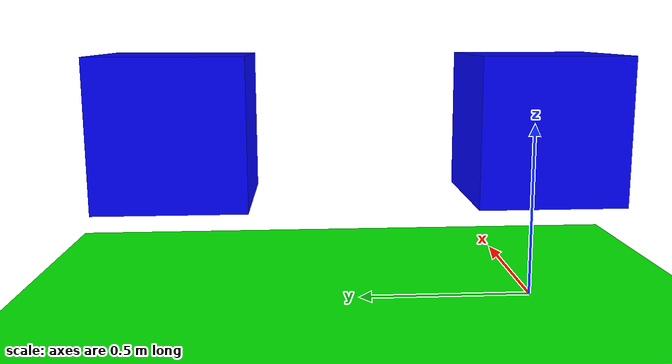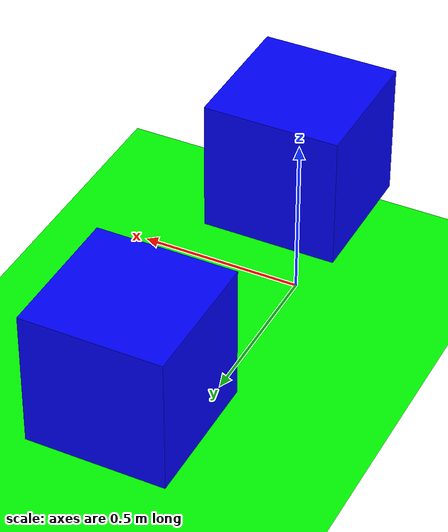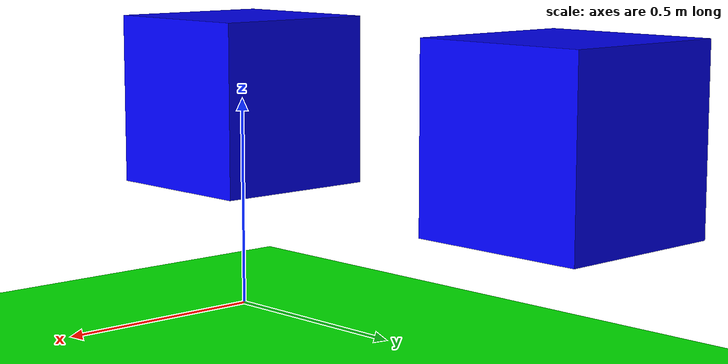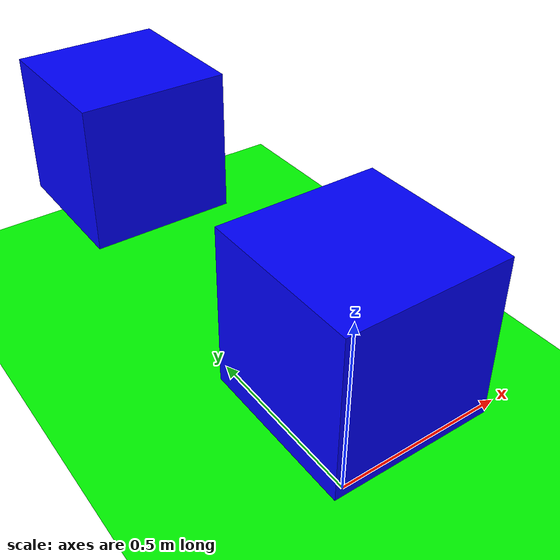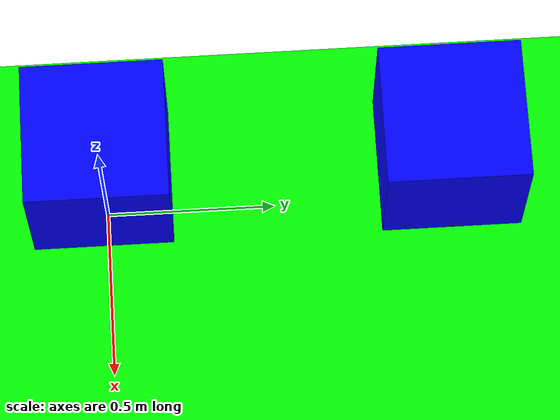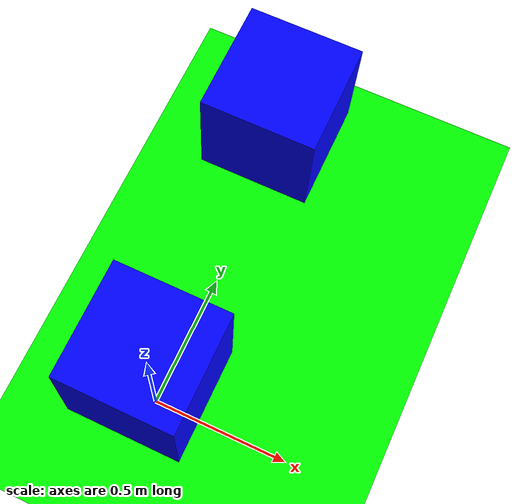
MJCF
<mujoco model="rolling_cube">
    <option timestep="0.01" gravity="0 0 -9.81"/> <!-- premte de definir la graviter -->
    <worldbody> <!-- la ou nous créon les objet -->
        <!-- Sol -->
        <geom type="plane" size="5 5 0.1" rgba="0 1 0 1"/> <!--defint le sol / size = la dimention / rgba = coleur de l'objet -->

        <!-- Cube avec joint libre -->
        <body name="cube" pos="0 0 0.5"> <!-- body = c'est un corp qui s'aplle cube, et qu'il a commen position de depart x = 0 y= 0 z = 0.5 en m -->
            <joint name="free_joint" type="free"/> <!-- joint = articulation type voir le tableaux -->
            <geom type="box" size="0.2 0.2 0.2" mass="1" rgba="0 0 1 1"/> <!-- type "box" = boite, dimention, masse en kg -->
        </body>
        <body name="cube2" pos="0 1 0.5">
            <joint name="freed" type="free"/>
            <geom type="box" size="0.2 0.2 0.2" mass="01" rgba="0 0 1 1"/>
        </body>
    </worldbody>

    <!-- Contrôleur pour appliquer un couple (torque) -->
    <actuator>
        <motor joint="free_joint" ctrlrange="-10 10" gear="0 0 0 1 0 0"/> <!-- gear = [TX,TY,TZ,RX,RY,RZ] -->
    </actuator>
</mujoco>
